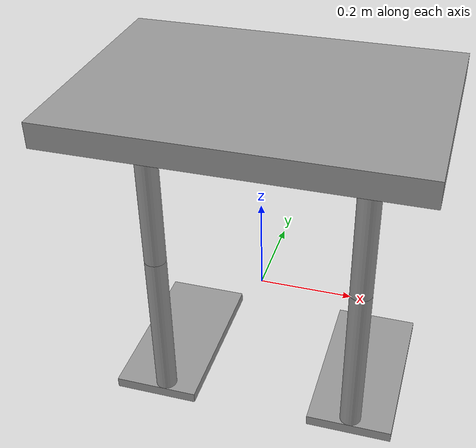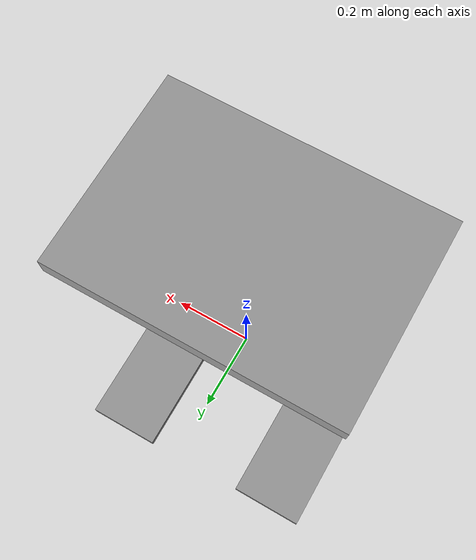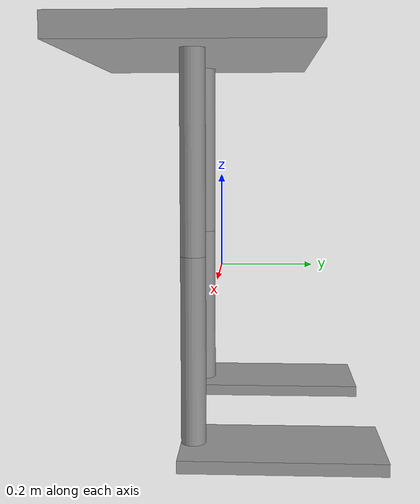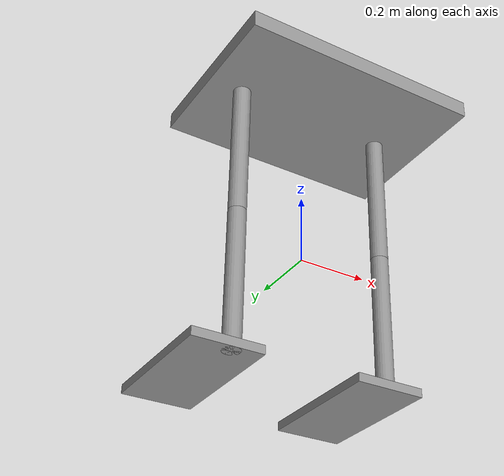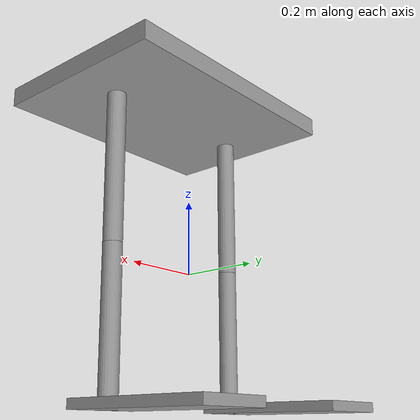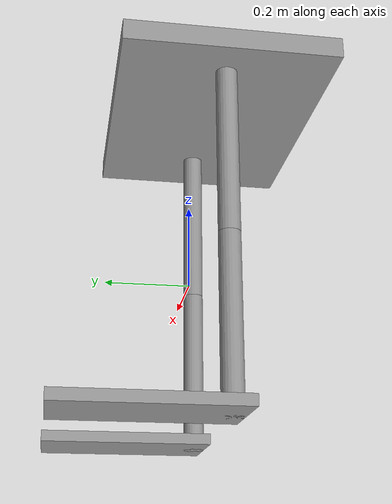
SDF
<?xml version='1.0'?>
<sdf version='1.6'>
  <model name='robotmodel'>
    <link name='link_0'>
      <pose frame=''>-0.249002 0.122095 -0.3375 0 -0 0</pose>
      <inertial>
        <mass>1</mass>
        <inertia>
          <ixx>0.166667</ixx>
          <ixy>0</ixy>
          <ixz>0</ixz>
          <iyy>0.166667</iyy>
          <iyz>0</iyz>
          <izz>0.166667</izz>
        </inertia>
        <pose frame=''>0 0 0 0 -0 0</pose>
      </inertial>
      <gravity>1</gravity>
      <self_collide>0</self_collide>
      <kinematic>0</kinematic>
      <visual name='visual'>
        <pose frame=''>0 0 0 0 -0 0</pose>
        <geometry>
          <box>
            <size>0.2 0.4 0.025</size>
          </box>
        </geometry>
        <material>
          <lighting>1</lighting>
          <script>
            <uri>file://media/materials/scripts/gazebo.material</uri>
            <name>Gazebo/Grey</name>
          </script>
          <shader type='pixel'>
            <normal_map>__default__</normal_map>
          </shader>
          <ambient>0.3 0.3 0.3 1</ambient>
          <diffuse>0.7 0.7 0.7 1</diffuse>
          <specular>0.01 0.01 0.01 1</specular>
          <emissive>0 0 0 1</emissive>
        </material>
        <transparency>0</transparency>
        <cast_shadows>1</cast_shadows>
      </visual>
      <collision name='collision'>
        <laser_retro>0</laser_retro>
        <max_contacts>10</max_contacts>
        <pose frame=''>0 0 0 0 -0 0</pose>
        <geometry>
          <box>
            <size>0.2 0.4 0.025</size>
          </box>
        </geometry>
        <surface>
          <friction>
            <ode>
              <mu>1</mu>
              <mu2>1</mu2>
              <fdir1>0 0 0</fdir1>
              <slip1>0</slip1>
              <slip2>0</slip2>
            </ode>
            <torsional>
              <coefficient>1</coefficient>
              <patch_radius>0</patch_radius>
              <surface_radius>0</surface_radius>
              <use_patch_radius>1</use_patch_radius>
              <ode>
                <slip>0</slip>
              </ode>
            </torsional>
          </friction>
          <bounce>
            <restitution_coefficient>0</restitution_coefficient>
            <threshold>1e+06</threshold>
          </bounce>
          <contact>
            <collide_without_contact>0</collide_without_contact>
            <collide_without_contact_bitmask>1</collide_without_contact_bitmask>
            <collide_bitmask>1</collide_bitmask>
            <ode>
              <soft_cfm>0</soft_cfm>
              <soft_erp>0.2</soft_erp>
              <kp>1e+13</kp>
              <kd>1</kd>
              <max_vel>0.01</max_vel>
              <min_depth>0</min_depth>
            </ode>
            <bullet>
              <split_impulse>1</split_impulse>
              <split_impulse_penetration_threshold>-0.01</split_impulse_penetration_threshold>
              <soft_cfm>0</soft_cfm>
              <soft_erp>0.2</soft_erp>
              <kp>1e+13</kp>
              <kd>1</kd>
            </bullet>
          </contact>
        </surface>
      </collision>
    </link>
    <link name='link_0_clone'>
      <pose frame=''>0.229252 0.128874 -0.3375 0 -0 0</pose>
      <inertial>
        <mass>1</mass>
        <inertia>
          <ixx>0.166667</ixx>
          <ixy>0</ixy>
          <ixz>0</ixz>
          <iyy>0.166667</iyy>
          <iyz>0</iyz>
          <izz>0.166667</izz>
        </inertia>
        <pose frame=''>0 0 0 0 -0 0</pose>
      </inertial>
      <self_collide>0</self_collide>
      <kinematic>0</kinematic>
      <gravity>1</gravity>
      <visual name='visual'>
        <pose frame=''>0 0 0 0 -0 0</pose>
        <geometry>
          <box>
            <size>0.2 0.4 0.025</size>
          </box>
        </geometry>
        <material>
          <lighting>1</lighting>
          <script>
            <uri>file://media/materials/scripts/gazebo.material</uri>
            <name>Gazebo/Grey</name>
          </script>
          <shader type='pixel'>
            <normal_map>__default__</normal_map>
          </shader>
          <ambient>0.3 0.3 0.3 1</ambient>
          <diffuse>0.7 0.7 0.7 1</diffuse>
          <specular>0.01 0.01 0.01 1</specular>
          <emissive>0 0 0 1</emissive>
        </material>
        <transparency>0</transparency>
        <cast_shadows>1</cast_shadows>
      </visual>
      <collision name='collision'>
        <laser_retro>0</laser_retro>
        <max_contacts>10</max_contacts>
        <pose frame=''>0 0 0 0 -0 0</pose>
        <geometry>
          <box>
            <size>0.2 0.4 0.025</size>
          </box>
        </geometry>
        <surface>
          <friction>
            <ode>
              <mu>1</mu>
              <mu2>1</mu2>
              <fdir1>0 0 0</fdir1>
              <slip1>0</slip1>
              <slip2>0</slip2>
            </ode>
            <torsional>
              <coefficient>1</coefficient>
              <patch_radius>0</patch_radius>
              <surface_radius>0</surface_radius>
              <use_patch_radius>1</use_patch_radius>
              <ode>
                <slip>0</slip>
              </ode>
            </torsional>
          </friction>
          <bounce>
            <restitution_coefficient>0</restitution_coefficient>
            <threshold>1e+06</threshold>
          </bounce>
          <contact>
            <collide_without_contact>0</collide_without_contact>
            <collide_without_contact_bitmask>1</collide_without_contact_bitmask>
            <collide_bitmask>1</collide_bitmask>
            <ode>
              <soft_cfm>0</soft_cfm>
              <soft_erp>0.2</soft_erp>
              <kp>1e+13</kp>
              <kd>1</kd>
              <max_vel>0.01</max_vel>
              <min_depth>0</min_depth>
            </ode>
            <bullet>
              <split_impulse>1</split_impulse>
              <split_impulse_penetration_threshold>-0.01</split_impulse_penetration_threshold>
              <soft_cfm>0</soft_cfm>
              <soft_erp>0.2</soft_erp>
              <kp>1e+13</kp>
              <kd>1</kd>
            </bullet>
          </contact>
        </surface>
      </collision>
    </link>
    <link name='link_1'>
      <pose frame=''>0.229252 -0.046126 0.25 0 -0 0</pose>
      <inertial>
        <mass>1</mass>
        <inertia>
          <ixx>0.145833</ixx>
          <ixy>0</ixy>
          <ixz>0</ixz>
          <iyy>0.145833</iyy>
          <iyz>0</iyz>
          <izz>0.125</izz>
        </inertia>
        <pose frame=''>0 0 0 0 -0 0</pose>
      </inertial>
      <gravity>1</gravity>
      <self_collide>0</self_collide>
      <kinematic>0</kinematic>
      <visual name='visual'>
        <pose frame=''>0 0 0 0 -0 0</pose>
        <geometry>
          <cylinder>
            <radius>0.025</radius>
            <length>0.4</length>
          </cylinder>
        </geometry>
        <material>
          <lighting>1</lighting>
          <script>
            <uri>file://media/materials/scripts/gazebo.material</uri>
            <name>Gazebo/Grey</name>
          </script>
          <shader type='pixel'>
            <normal_map>__default__</normal_map>
          </shader>
          <ambient>0.3 0.3 0.3 1</ambient>
          <diffuse>0.7 0.7 0.7 1</diffuse>
          <specular>0.01 0.01 0.01 1</specular>
          <emissive>0 0 0 1</emissive>
        </material>
        <transparency>0</transparency>
        <cast_shadows>1</cast_shadows>
      </visual>
      <collision name='collision'>
        <laser_retro>0</laser_retro>
        <max_contacts>10</max_contacts>
        <pose frame=''>0 0 0 0 -0 0</pose>
        <geometry>
          <cylinder>
            <radius>0.025</radius>
            <length>0.4</length>
          </cylinder>
        </geometry>
        <surface>
          <friction>
            <ode>
              <mu>1</mu>
              <mu2>1</mu2>
              <fdir1>0 0 0</fdir1>
              <slip1>0</slip1>
              <slip2>0</slip2>
            </ode>
            <torsional>
              <coefficient>1</coefficient>
              <patch_radius>0</patch_radius>
              <surface_radius>0</surface_radius>
              <use_patch_radius>1</use_patch_radius>
              <ode>
                <slip>0</slip>
              </ode>
            </torsional>
          </friction>
          <bounce>
            <restitution_coefficient>0</restitution_coefficient>
            <threshold>1e+06</threshold>
          </bounce>
          <contact>
            <collide_without_contact>0</collide_without_contact>
            <collide_without_contact_bitmask>1</collide_without_contact_bitmask>
            <collide_bitmask>1</collide_bitmask>
            <ode>
              <soft_cfm>0</soft_cfm>
              <soft_erp>0.2</soft_erp>
              <kp>1e+13</kp>
              <kd>1</kd>
              <max_vel>0.01</max_vel>
              <min_depth>0</min_depth>
            </ode>
            <bullet>
              <split_impulse>1</split_impulse>
              <split_impulse_penetration_threshold>-0.01</split_impulse_penetration_threshold>
              <soft_cfm>0</soft_cfm>
              <soft_erp>0.2</soft_erp>
              <kp>1e+13</kp>
              <kd>1</kd>
            </bullet>
          </contact>
        </surface>
      </collision>
    </link>
    <link name='link_1_clone'>
      <pose frame=''>-0.229002 -0.052906 -0.15 0 -0 0</pose>
      <inertial>
        <mass>1</mass>
        <inertia>
          <ixx>0.145833</ixx>
          <ixy>0</ixy>
          <ixz>0</ixz>
          <iyy>0.145833</iyy>
          <iyz>0</iyz>
          <izz>0.125</izz>
        </inertia>
        <pose frame=''>0 0 0 0 -0 0</pose>
      </inertial>
      <self_collide>0</self_collide>
      <kinematic>0</kinematic>
      <visual name='visual'>
        <pose frame=''>0 0 0 0 -0 0</pose>
        <geometry>
          <cylinder>
            <radius>0.025</radius>
            <length>0.4</length>
          </cylinder>
        </geometry>
        <material>
          <lighting>1</lighting>
          <script>
            <uri>file://media/materials/scripts/gazebo.material</uri>
            <name>Gazebo/Grey</name>
          </script>
          <shader type='pixel'>
            <normal_map>__default__</normal_map>
          </shader>
          <ambient>0.3 0.3 0.3 1</ambient>
          <diffuse>0.7 0.7 0.7 1</diffuse>
          <specular>0.01 0.01 0.01 1</specular>
          <emissive>0 0 0 1</emissive>
        </material>
        <transparency>0</transparency>
        <cast_shadows>1</cast_shadows>
      </visual>
      <collision name='collision'>
        <laser_retro>0</laser_retro>
        <max_contacts>10</max_contacts>
        <pose frame=''>0 0 0 0 -0 0</pose>
        <geometry>
          <cylinder>
            <radius>0.025</radius>
            <length>0.4</length>
          </cylinder>
        </geometry>
        <surface>
          <friction>
            <ode>
              <mu>1</mu>
              <mu2>1</mu2>
              <fdir1>0 0 0</fdir1>
              <slip1>0</slip1>
              <slip2>0</slip2>
            </ode>
            <torsional>
              <coefficient>1</coefficient>
              <patch_radius>0</patch_radius>
              <surface_radius>0</surface_radius>
              <use_patch_radius>1</use_patch_radius>
              <ode>
                <slip>0</slip>
              </ode>
            </torsional>
          </friction>
          <bounce>
            <restitution_coefficient>0</restitution_coefficient>
            <threshold>1e+06</threshold>
          </bounce>
          <contact>
            <collide_without_contact>0</collide_without_contact>
            <collide_without_contact_bitmask>1</collide_without_contact_bitmask>
            <collide_bitmask>1</collide_bitmask>
            <ode>
              <soft_cfm>0</soft_cfm>
              <soft_erp>0.2</soft_erp>
              <kp>1e+13</kp>
              <kd>1</kd>
              <max_vel>0.01</max_vel>
              <min_depth>0</min_depth>
            </ode>
            <bullet>
              <split_impulse>1</split_impulse>
              <split_impulse_penetration_threshold>-0.01</split_impulse_penetration_threshold>
              <soft_cfm>0</soft_cfm>
              <soft_erp>0.2</soft_erp>
              <kp>1e+13</kp>
              <kd>1</kd>
            </bullet>
          </contact>
        </surface>
      </collision>
    </link>
    <link name='link_1_clone_0'>
      <pose frame=''>0.229252 -0.046126 -0.15 0 -0 0</pose>
      <inertial>
        <mass>1</mass>
        <inertia>
          <ixx>0.145833</ixx>
          <ixy>0</ixy>
          <ixz>0</ixz>
          <iyy>0.145833</iyy>
          <iyz>0</iyz>
          <izz>0.125</izz>
        </inertia>
        <pose frame=''>0 0 0 0 -0 0</pose>
      </inertial>
      <self_collide>0</self_collide>
      <kinematic>0</kinematic>
      <visual name='visual'>
        <pose frame=''>0 0 0 0 -0 0</pose>
        <geometry>
          <cylinder>
            <radius>0.025</radius>
            <length>0.4</length>
          </cylinder>
        </geometry>
        <material>
          <lighting>1</lighting>
          <script>
            <uri>file://media/materials/scripts/gazebo.material</uri>
            <name>Gazebo/Grey</name>
          </script>
          <shader type='pixel'>
            <normal_map>__default__</normal_map>
          </shader>
          <ambient>0.3 0.3 0.3 1</ambient>
          <diffuse>0.7 0.7 0.7 1</diffuse>
          <specular>0.01 0.01 0.01 1</specular>
          <emissive>0 0 0 1</emissive>
        </material>
        <transparency>0</transparency>
        <cast_shadows>1</cast_shadows>
      </visual>
      <collision name='collision'>
        <laser_retro>0</laser_retro>
        <max_contacts>10</max_contacts>
        <pose frame=''>0 0 0 0 -0 0</pose>
        <geometry>
          <cylinder>
            <radius>0.025</radius>
            <length>0.4</length>
          </cylinder>
        </geometry>
        <surface>
          <friction>
            <ode>
              <mu>1</mu>
              <mu2>1</mu2>
              <fdir1>0 0 0</fdir1>
              <slip1>0</slip1>
              <slip2>0</slip2>
            </ode>
            <torsional>
              <coefficient>1</coefficient>
              <patch_radius>0</patch_radius>
              <surface_radius>0</surface_radius>
              <use_patch_radius>1</use_patch_radius>
              <ode>
                <slip>0</slip>
              </ode>
            </torsional>
          </friction>
          <bounce>
            <restitution_coefficient>0</restitution_coefficient>
            <threshold>1e+06</threshold>
          </bounce>
          <contact>
            <collide_without_contact>0</collide_without_contact>
            <collide_without_contact_bitmask>1</collide_without_contact_bitmask>
            <collide_bitmask>1</collide_bitmask>
            <ode>
              <soft_cfm>0</soft_cfm>
              <soft_erp>0.2</soft_erp>
              <kp>1e+13</kp>
              <kd>1</kd>
              <max_vel>0.01</max_vel>
              <min_depth>0</min_depth>
            </ode>
            <bullet>
              <split_impulse>1</split_impulse>
              <split_impulse_penetration_threshold>-0.01</split_impulse_penetration_threshold>
              <soft_cfm>0</soft_cfm>
              <soft_erp>0.2</soft_erp>
              <kp>1e+13</kp>
              <kd>1</kd>
            </bullet>
          </contact>
        </surface>
      </collision>
    </link>
    <link name='link_1_clone_1'>
      <pose frame=''>-0.229002 -0.052906 0.25 0 -0 0</pose>
      <inertial>
        <mass>1</mass>
        <inertia>
          <ixx>0.145833</ixx>
          <ixy>0</ixy>
          <ixz>0</ixz>
          <iyy>0.145833</iyy>
          <iyz>0</iyz>
          <izz>0.125</izz>
        </inertia>
        <pose frame=''>0 0 0 0 -0 0</pose>
      </inertial>
      <self_collide>0</self_collide>
      <kinematic>0</kinematic>
      <visual name='visual'>
        <pose frame=''>0 0 0 0 -0 0</pose>
        <geometry>
          <cylinder>
            <radius>0.025</radius>
            <length>0.4</length>
          </cylinder>
        </geometry>
        <material>
          <lighting>1</lighting>
          <script>
            <uri>file://media/materials/scripts/gazebo.material</uri>
            <name>Gazebo/Grey</name>
          </script>
          <shader type='pixel'>
            <normal_map>__default__</normal_map>
          </shader>
          <ambient>0.3 0.3 0.3 1</ambient>
          <diffuse>0.7 0.7 0.7 1</diffuse>
          <specular>0.01 0.01 0.01 1</specular>
          <emissive>0 0 0 1</emissive>
        </material>
        <transparency>0</transparency>
        <cast_shadows>1</cast_shadows>
      </visual>
      <collision name='collision'>
        <laser_retro>0</laser_retro>
        <max_contacts>10</max_contacts>
        <pose frame=''>0 0 0 0 -0 0</pose>
        <geometry>
          <cylinder>
            <radius>0.025</radius>
            <length>0.4</length>
          </cylinder>
        </geometry>
        <surface>
          <friction>
            <ode>
              <mu>1</mu>
              <mu2>1</mu2>
              <fdir1>0 0 0</fdir1>
              <slip1>0</slip1>
              <slip2>0</slip2>
            </ode>
            <torsional>
              <coefficient>1</coefficient>
              <patch_radius>0</patch_radius>
              <surface_radius>0</surface_radius>
              <use_patch_radius>1</use_patch_radius>
              <ode>
                <slip>0</slip>
              </ode>
            </torsional>
          </friction>
          <bounce>
            <restitution_coefficient>0</restitution_coefficient>
            <threshold>1e+06</threshold>
          </bounce>
          <contact>
            <collide_without_contact>0</collide_without_contact>
            <collide_without_contact_bitmask>1</collide_without_contact_bitmask>
            <collide_bitmask>1</collide_bitmask>
            <ode>
              <soft_cfm>0</soft_cfm>
              <soft_erp>0.2</soft_erp>
              <kp>1e+13</kp>
              <kd>1</kd>
              <max_vel>0.01</max_vel>
              <min_depth>0</min_depth>
            </ode>
            <bullet>
              <split_impulse>1</split_impulse>
              <split_impulse_penetration_threshold>-0.01</split_impulse_penetration_threshold>
              <soft_cfm>0</soft_cfm>
              <soft_erp>0.2</soft_erp>
              <kp>1e+13</kp>
              <kd>1</kd>
            </bullet>
          </contact>
        </surface>
      </collision>
    </link>
    <link name='link_2'>
      <pose frame=''>0.019252 -0.052906 0.475 0 -0 0</pose>
      <inertial>
        <mass>1</mass>
        <inertia>
          <ixx>0.166667</ixx>
          <ixy>0</ixy>
          <ixz>0</ixz>
          <iyy>0.166667</iyy>
          <iyz>0</iyz>
          <izz>0.166667</izz>
        </inertia>
        <pose frame=''>0 0 0 0 -0 0</pose>
      </inertial>
      <gravity>1</gravity>
      <self_collide>0</self_collide>
      <kinematic>0</kinematic>
      <visual name='visual'>
        <pose frame=''>0 0 0 0 -0 0</pose>
        <geometry>
          <box>
            <size>0.7 0.5 0.05</size>
          </box>
        </geometry>
        <material>
          <lighting>1</lighting>
          <script>
            <uri>file://media/materials/scripts/gazebo.material</uri>
            <name>Gazebo/Grey</name>
          </script>
          <shader type='pixel'>
            <normal_map>__default__</normal_map>
          </shader>
          <ambient>0.3 0.3 0.3 1</ambient>
          <diffuse>0.7 0.7 0.7 1</diffuse>
          <specular>0.01 0.01 0.01 1</specular>
          <emissive>0 0 0 1</emissive>
        </material>
        <transparency>0</transparency>
        <cast_shadows>1</cast_shadows>
      </visual>
      <collision name='collision'>
        <laser_retro>0</laser_retro>
        <max_contacts>10</max_contacts>
        <pose frame=''>0 0 0 0 -0 0</pose>
        <geometry>
          <box>
            <size>0.7 0.5 0.05</size>
          </box>
        </geometry>
        <surface>
          <friction>
            <ode>
              <mu>1</mu>
              <mu2>1</mu2>
              <fdir1>0 0 0</fdir1>
              <slip1>0</slip1>
              <slip2>0</slip2>
            </ode>
            <torsional>
              <coefficient>1</coefficient>
              <patch_radius>0</patch_radius>
              <surface_radius>0</surface_radius>
              <use_patch_radius>1</use_patch_radius>
              <ode>
                <slip>0</slip>
              </ode>
            </torsional>
          </friction>
          <bounce>
            <restitution_coefficient>0</restitution_coefficient>
            <threshold>1e+06</threshold>
          </bounce>
          <contact>
            <collide_without_contact>0</collide_without_contact>
            <collide_without_contact_bitmask>1</collide_without_contact_bitmask>
            <collide_bitmask>1</collide_bitmask>
            <ode>
              <soft_cfm>0</soft_cfm>
              <soft_erp>0.2</soft_erp>
              <kp>1e+13</kp>
              <kd>1</kd>
              <max_vel>0.01</max_vel>
              <min_depth>0</min_depth>
            </ode>
            <bullet>
              <split_impulse>1</split_impulse>
              <split_impulse_penetration_threshold>-0.01</split_impulse_penetration_threshold>
              <soft_cfm>0</soft_cfm>
              <soft_erp>0.2</soft_erp>
              <kp>1e+13</kp>
              <kd>1</kd>
            </bullet>
          </contact>
        </surface>
      </collision>
    </link>
    <joint name='link_0_JOINT_1' type='fixed'>
      <parent>link_0</parent>
      <child>link_1_clone</child>
      <pose frame=''>0 0 0 0 -0 0</pose>
      <physics>
        <ode>
          <limit>
            <cfm>0</cfm>
            <erp>0.2</erp>
          </limit>
          <suspension>
            <cfm>0</cfm>
            <erp>0.2</erp>
          </suspension>
        </ode>
      </physics>
    </joint>
    <joint name='link_0_clone_JOINT_2' type='fixed'>
      <parent>link_0_clone</parent>
      <child>link_1_clone_0</child>
      <pose frame=''>0 0 0 0 -0 0</pose>
      <physics>
        <ode>
          <limit>
            <cfm>0</cfm>
            <erp>0.2</erp>
          </limit>
          <suspension>
            <cfm>0</cfm>
            <erp>0.2</erp>
          </suspension>
        </ode>
      </physics>
    </joint>
    <joint name='link_1_JOINT_5' type='fixed'>
      <parent>link_1</parent>
      <child>link_2</child>
      <pose frame=''>0 0 0 0 -0 0</pose>
      <physics>
        <ode>
          <limit>
            <cfm>0</cfm>
            <erp>0.2</erp>
          </limit>
          <suspension>
            <cfm>0</cfm>
            <erp>0.2</erp>
          </suspension>
        </ode>
      </physics>
    </joint>
    <joint name='link_1_clone_0_JOINT_4' type='fixed'>
      <parent>link_1_clone_0</parent>
      <child>link_1</child>
      <pose frame=''>0 0 0 0 -0 0</pose>
      <physics>
        <ode>
          <limit>
            <cfm>0</cfm>
            <erp>0.2</erp>
          </limit>
          <suspension>
            <cfm>0</cfm>
            <erp>0.2</erp>
          </suspension>
        </ode>
      </physics>
    </joint>
    <joint name='link_1_clone_1_JOINT_6' type='fixed'>
      <parent>link_1_clone_1</parent>
      <child>link_2</child>
      <pose frame=''>0 0 0 0 -0 0</pose>
      <physics>
        <ode>
          <limit>
            <cfm>0</cfm>
            <erp>0.2</erp>
          </limit>
          <suspension>
            <cfm>0</cfm>
            <erp>0.2</erp>
          </suspension>
        </ode>
      </physics>
    </joint>
    <joint name='link_1_clone_JOINT_3' type='fixed'>
      <parent>link_1_clone</parent>
      <child>link_1_clone_1</child>
      <pose frame=''>0 0 0 0 -0 0</pose>
      <physics>
        <ode>
          <limit>
            <cfm>0</cfm>
            <erp>0.2</erp>
          </limit>
          <suspension>
            <cfm>0</cfm>
            <erp>0.2</erp>
          </suspension>
        </ode>
      </physics>
    </joint>
    <static>0</static>
    <allow_auto_disable>1</allow_auto_disable>
  </model>
</sdf>
